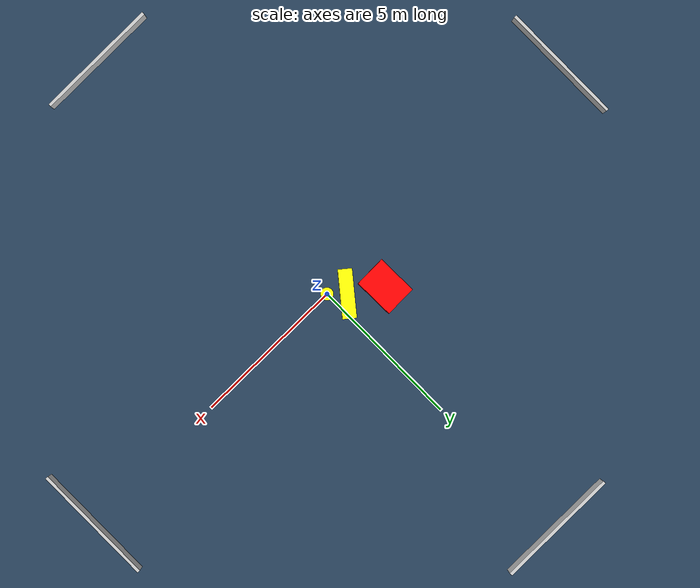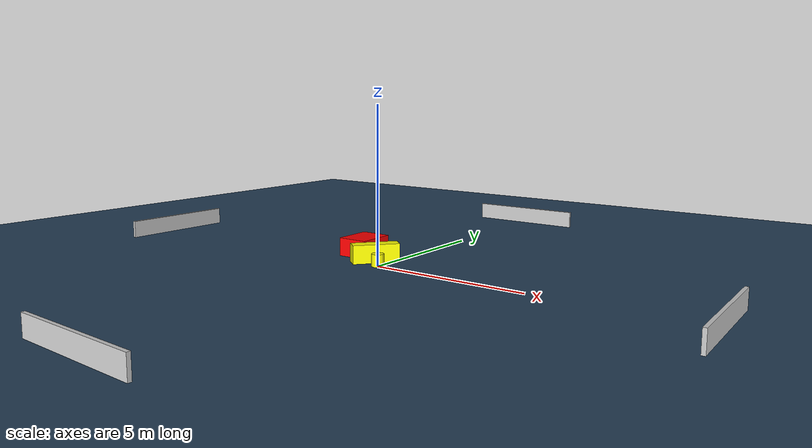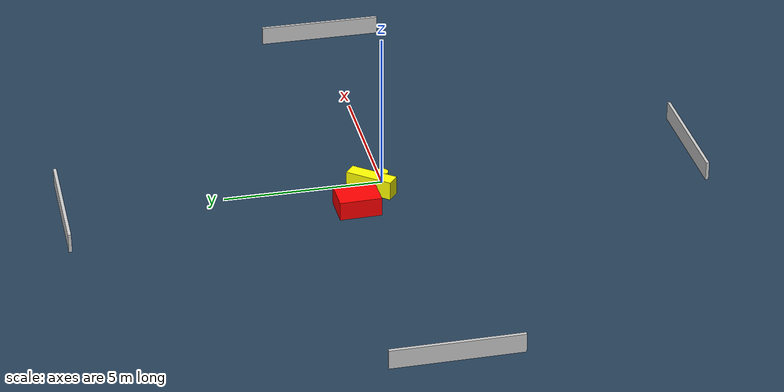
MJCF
<?xml version="1.0" ?>
<mujoco model="generated_environment">
  <option timestep="0.01" integrator="RK4" cone="elliptic"/>
  <default>
    <geom density="1"/>
  </default>
  <asset>
    <texture builtin="gradient" height="3072" name="skybox" rgb1="0.3 0.5 0.7" rgb2="0 0 0" type="skybox" width="512"/>
    <texture builtin="checker" height="300" name="groundplane" rgb1="0.2 0.3 0.4" rgb2="0.1 0.2 0.3" type="2d" width="300"/>
    <material name="groundplane" reflectance="0.2" texrepeat="5 5" texture="groundplane"/>
  </asset>
  <worldbody>
    <light dir="0 0 -1" directional="true" pos="0 0 1.5"/>
    <geom condim="3" friction="0.5 0.005 0.001" material="groundplane" name="floor" pos="0 0 0" size="0 0 0.05" type="plane"/>
    <body name="walls">
      <geom name="wall_1" condim="4" pos="-10.0 0.0 0.3" rgba="0.800000011920929 0.800000011920929 0.800000011920929 1.0" size="0.05 2.0 0.3" type="box"/>
      <geom name="wall_2" condim="4" pos="10.0 0.0 0.3" rgba="0.800000011920929 0.800000011920929 0.800000011920929 1.0" size="0.05 2.0 0.3" type="box"/>
      <geom name="wall_3" condim="4" pos="0.0 -10.0 0.3" rgba="0.800000011920929 0.800000011920929 0.800000011920929 1.0" size="2.0 0.05 0.3" type="box"/>
      <geom name="wall_4" condim="4" pos="0.0 10.0 0.3" rgba="0.800000011920929 0.800000011920929 0.800000011920929 1.0" size="2.0 0.05 0.3" type="box"/>
    </body>
    <body name="robot">
      <joint name="joint_x" type="slide" pos="0 0 0" axis="1 0 0"/>
      <joint name="joint_y" type="slide" pos="0 0 0" axis="0 1 0"/>
      <geom name="robot" type="cylinder" pos="0.0 0.0 0.2" size="0.2 0.2 0.0" mass="5.0" friction="1.0 0.005 0.0001" condim="4" rgba="1.0 1.0 0.0 1.0"/>
    </body>
    <body name="obstacle_1_movable">
      <geom name="obstacle_1_movable" condim="4" pos="-0.44254659142821146 0.4274936890399476 0.3" euler="0 0 321.13197893772644" friction="0.0 0.005 0.001" rgba="1.0 1.0 0.0 1.0" size="0.22154635515388066 0.7639676903371619 0.3" type="box" mass="0.1"/>
      <joint type="free"/>
    </body>
    <body name="obstacle_2_static">
      <geom name="obstacle_2_static" condim="4" pos="-1.4225907678469873 1.0835337848405202 0.3" euler="0 0 91.20591402540774" friction="0.0 0.005 0.001" rgba="1.0 0.0 0.0 1.0" size="0.6571609559371456 0.5140380406426648 0.3" type="box"/>
    </body>
  </worldbody>
  <actuator>
    <motor name="actuator_x" joint="joint_x" gear="1" ctrlrange="-1 1"/>
    <motor name="actuator_y" joint="joint_y" gear="1" ctrlrange="-1 1"/>
  </actuator>
</mujoco>
